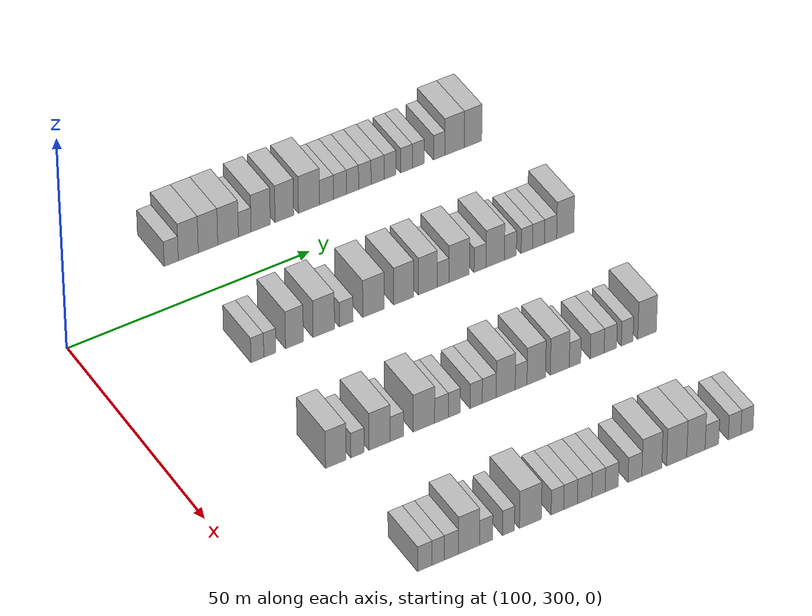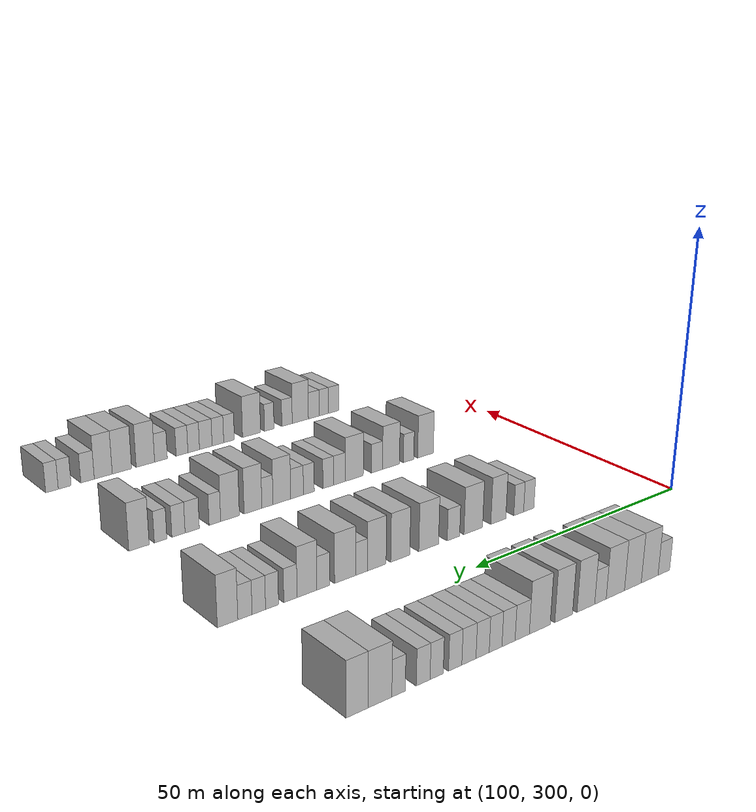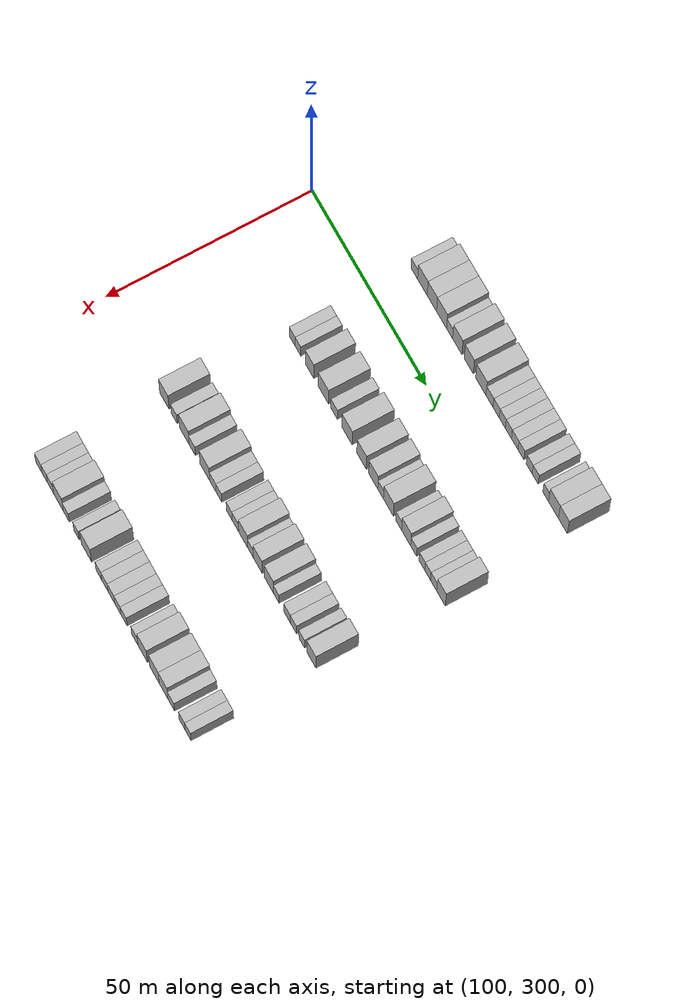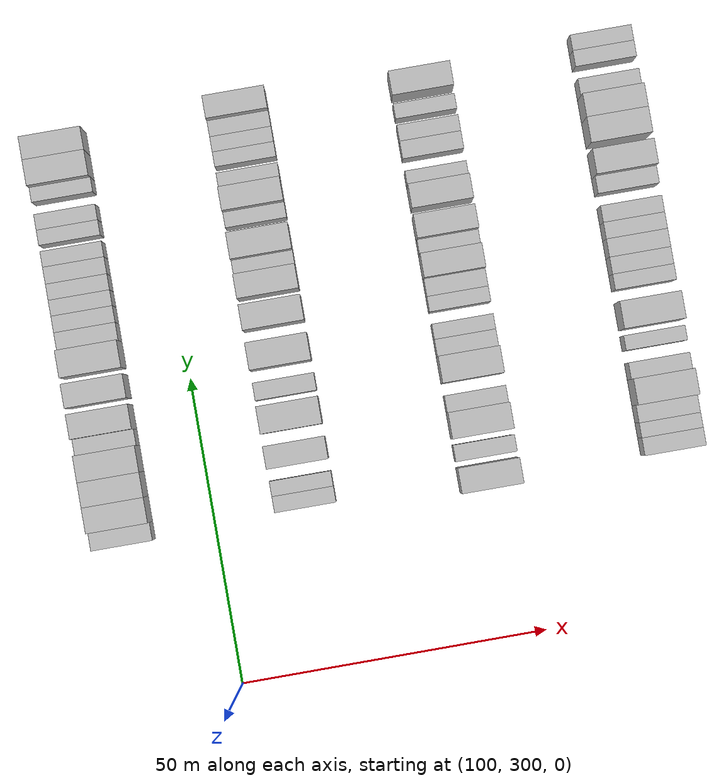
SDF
<sdf version="1.6">
 <world name="default">
  <model name="building_644">
   <static>1</static>
   <pose>85.0000 326.8894 0 0.000000 0.000000 0.000000</pose>
   <link name="link">
    <pose>0 0 3.00 0 0 0</pose>
    <collision name="collision"><geometry><box><size>10.0000 2.9223 6.0000</size></box></geometry></collision>
    <visual name="visual">
     <cast_shadows>0</cast_shadows>
     <geometry><box><size>10.0000 2.9223 6.0000</size></box></geometry>
     <material>
      <script>
       <uri>model://HANNAS_wall/materials/scripts</uri>
       <uri>model://HANNAS_wall/materials/textures</uri>
       <name>vrc/HANNAS_wall</name>
      </script>
     </material>
    </visual>
   </link>
  </model>
  <model name="building_645">
   <static>1</static>
   <pose>85.0000 330.4283 0 0.000000 0.000000 0.000000</pose>
   <link name="link">
    <pose>0 0 4.50 0 0 0</pose>
    <collision name="collision"><geometry><box><size>10.0000 4.1554 9.0000</size></box></geometry></collision>
    <visual name="visual">
     <cast_shadows>0</cast_shadows>
     <geometry><box><size>10.0000 4.1554 9.0000</size></box></geometry>
     <material>
      <script>
       <uri>model://HANNAS_wall/materials/scripts</uri>
       <uri>model://HANNAS_wall/materials/textures</uri>
       <name>vrc/HANNAS_wall</name>
      </script>
     </material>
    </visual>
   </link>
  </model>
  <model name="building_646">
   <static>1</static>
   <pose>85.0000 334.5354 0 0.000000 0.000000 0.000000</pose>
   <link name="link">
    <pose>0 0 4.50 0 0 0</pose>
    <collision name="collision"><geometry><box><size>10.0000 4.0590 9.0000</size></box></geometry></collision>
    <visual name="visual">
     <cast_shadows>0</cast_shadows>
     <geometry><box><size>10.0000 4.0590 9.0000</size></box></geometry>
     <material>
      <script>
       <uri>model://HANNAS_wall/materials/scripts</uri>
       <uri>model://HANNAS_wall/materials/textures</uri>
       <name>vrc/HANNAS_wall</name>
      </script>
     </material>
    </visual>
   </link>
  </model>
  <model name="building_647">
   <static>1</static>
   <pose>85.0000 338.7212 0 0.000000 0.000000 0.000000</pose>
   <link name="link">
    <pose>0 0 4.50 0 0 0</pose>
    <collision name="collision"><geometry><box><size>10.0000 4.3125 9.0000</size></box></geometry></collision>
    <visual name="visual">
     <cast_shadows>0</cast_shadows>
     <geometry><box><size>10.0000 4.3125 9.0000</size></box></geometry>
     <material>
      <script>
       <uri>model://HANNAS_wall/materials/scripts</uri>
       <uri>model://HANNAS_wall/materials/textures</uri>
       <name>vrc/HANNAS_wall</name>
      </script>
     </material>
    </visual>
   </link>
  </model>
  <model name="building_648">
   <static>1</static>
   <pose>85.0000 342.2088 0 0.000000 0.000000 0.000000</pose>
   <link name="link">
    <pose>0 0 3.00 0 0 0</pose>
    <collision name="collision"><geometry><box><size>10.0000 2.6627 6.0000</size></box></geometry></collision>
    <visual name="visual">
     <cast_shadows>0</cast_shadows>
     <geometry><box><size>10.0000 2.6627 6.0000</size></box></geometry>
     <material>
      <script>
       <uri>model://HANNAS_wall/materials/scripts</uri>
       <uri>model://HANNAS_wall/materials/textures</uri>
       <name>vrc/HANNAS_wall</name>
      </script>
     </material>
    </visual>
   </link>
  </model>
  <model name="building_649">
   <static>1</static>
   <pose>85.0000 345.5513 0 0.000000 0.000000 0.000000</pose>
   <link name="link">
    <pose>0 0 4.50 0 0 0</pose>
    <collision name="collision"><geometry><box><size>10.0000 4.0223 9.0000</size></box></geometry></collision>
    <visual name="visual">
     <cast_shadows>0</cast_shadows>
     <geometry><box><size>10.0000 4.0223 9.0000</size></box></geometry>
     <material>
      <script>
       <uri>model://HANNAS_wall/materials/scripts</uri>
       <uri>model://HANNAS_wall/materials/textures</uri>
       <name>vrc/HANNAS_wall</name>
      </script>
     </material>
    </visual>
   </link>
  </model>
  <model name="building_650">
   <static>1</static>
   <pose>85.0000 350.5192 0 0.000000 0.000000 0.000000</pose>
   <link name="link">
    <pose>0 0 4.50 0 0 0</pose>
    <collision name="collision"><geometry><box><size>10.0000 3.9135 9.0000</size></box></geometry></collision>
    <visual name="visual">
     <cast_shadows>0</cast_shadows>
     <geometry><box><size>10.0000 3.9135 9.0000</size></box></geometry>
     <material>
      <script>
       <uri>model://HANNAS_wall/materials/scripts</uri>
       <uri>model://HANNAS_wall/materials/textures</uri>
       <name>vrc/HANNAS_wall</name>
      </script>
     </material>
    </visual>
   </link>
  </model>
  <model name="building_651">
   <static>1</static>
   <pose>85.0000 355.7092 0 0.000000 0.000000 0.000000</pose>
   <link name="link">
    <pose>0 0 4.50 0 0 0</pose>
    <collision name="collision"><geometry><box><size>10.0000 4.4665 9.0000</size></box></geometry></collision>
    <visual name="visual">
     <cast_shadows>0</cast_shadows>
     <geometry><box><size>10.0000 4.4665 9.0000</size></box></geometry>
     <material>
      <script>
       <uri>model://HANNAS_wall/materials/scripts</uri>
       <uri>model://HANNAS_wall/materials/textures</uri>
       <name>vrc/HANNAS_wall</name>
      </script>
     </material>
    </visual>
   </link>
  </model>
  <model name="building_652">
   <static>1</static>
   <pose>85.0000 359.4335 0 0.000000 0.000000 0.000000</pose>
   <link name="link">
    <pose>0 0 3.00 0 0 0</pose>
    <collision name="collision"><geometry><box><size>10.0000 2.9821 6.0000</size></box></geometry></collision>
    <visual name="visual">
     <cast_shadows>0</cast_shadows>
     <geometry><box><size>10.0000 2.9821 6.0000</size></box></geometry>
     <material>
      <script>
       <uri>model://HANNAS_wall/materials/scripts</uri>
       <uri>model://HANNAS_wall/materials/textures</uri>
       <name>vrc/HANNAS_wall</name>
      </script>
     </material>
    </visual>
   </link>
  </model>
  <model name="building_653">
   <static>1</static>
   <pose>85.0000 362.2731 0 0.000000 0.000000 0.000000</pose>
   <link name="link">
    <pose>0 0 3.00 0 0 0</pose>
    <collision name="collision"><geometry><box><size>10.0000 2.6970 6.0000</size></box></geometry></collision>
    <visual name="visual">
     <cast_shadows>0</cast_shadows>
     <geometry><box><size>10.0000 2.6970 6.0000</size></box></geometry>
     <material>
      <script>
       <uri>model://HANNAS_wall/materials/scripts</uri>
       <uri>model://HANNAS_wall/materials/textures</uri>
       <name>vrc/HANNAS_wall</name>
      </script>
     </material>
    </visual>
   </link>
  </model>
  <model name="building_654">
   <static>1</static>
   <pose>85.0000 364.9172 0 0.000000 0.000000 0.000000</pose>
   <link name="link">
    <pose>0 0 3.00 0 0 0</pose>
    <collision name="collision"><geometry><box><size>10.0000 2.5913 6.0000</size></box></geometry></collision>
    <visual name="visual">
     <cast_shadows>0</cast_shadows>
     <geometry><box><size>10.0000 2.5913 6.0000</size></box></geometry>
     <material>
      <script>
       <uri>model://HANNAS_wall/materials/scripts</uri>
       <uri>model://HANNAS_wall/materials/textures</uri>
       <name>vrc/HANNAS_wall</name>
      </script>
     </material>
    </visual>
   </link>
  </model>
  <model name="building_655">
   <static>1</static>
   <pose>85.0000 367.5263 0 0.000000 0.000000 0.000000</pose>
   <link name="link">
    <pose>0 0 3.00 0 0 0</pose>
    <collision name="collision"><geometry><box><size>10.0000 2.6269 6.0000</size></box></geometry></collision>
    <visual name="visual">
     <cast_shadows>0</cast_shadows>
     <geometry><box><size>10.0000 2.6269 6.0000</size></box></geometry>
     <material>
      <script>
       <uri>model://HANNAS_wall/materials/scripts</uri>
       <uri>model://HANNAS_wall/materials/textures</uri>
       <name>vrc/HANNAS_wall</name>
      </script>
     </material>
    </visual>
   </link>
  </model>
  <model name="building_656">
   <static>1</static>
   <pose>85.0000 370.2239 0 0.000000 0.000000 0.000000</pose>
   <link name="link">
    <pose>0 0 3.00 0 0 0</pose>
    <collision name="collision"><geometry><box><size>10.0000 2.7682 6.0000</size></box></geometry></collision>
    <visual name="visual">
     <cast_shadows>0</cast_shadows>
     <geometry><box><size>10.0000 2.7682 6.0000</size></box></geometry>
     <material>
      <script>
       <uri>model://HANNAS_wall/materials/scripts</uri>
       <uri>model://HANNAS_wall/materials/textures</uri>
       <name>vrc/HANNAS_wall</name>
      </script>
     </material>
    </visual>
   </link>
  </model>
  <model name="building_657">
   <static>1</static>
   <pose>85.0000 372.8899 0 0.000000 0.000000 0.000000</pose>
   <link name="link">
    <pose>0 0 3.00 0 0 0</pose>
    <collision name="collision"><geometry><box><size>10.0000 2.5639 6.0000</size></box></geometry></collision>
    <visual name="visual">
     <cast_shadows>0</cast_shadows>
     <geometry><box><size>10.0000 2.5639 6.0000</size></box></geometry>
     <material>
      <script>
       <uri>model://HANNAS_wall/materials/scripts</uri>
       <uri>model://HANNAS_wall/materials/textures</uri>
       <name>vrc/HANNAS_wall</name>
      </script>
     </material>
    </visual>
   </link>
  </model>
  <model name="building_658">
   <static>1</static>
   <pose>85.0000 376.4154 0 0.000000 0.000000 0.000000</pose>
   <link name="link">
    <pose>0 0 3.00 0 0 0</pose>
    <collision name="collision"><geometry><box><size>10.0000 2.4871 6.0000</size></box></geometry></collision>
    <visual name="visual">
     <cast_shadows>0</cast_shadows>
     <geometry><box><size>10.0000 2.4871 6.0000</size></box></geometry>
     <material>
      <script>
       <uri>model://HANNAS_wall/materials/scripts</uri>
       <uri>model://HANNAS_wall/materials/textures</uri>
       <name>vrc/HANNAS_wall</name>
      </script>
     </material>
    </visual>
   </link>
  </model>
  <model name="building_659">
   <static>1</static>
   <pose>85.0000 378.9377 0 0.000000 0.000000 0.000000</pose>
   <link name="link">
    <pose>0 0 3.00 0 0 0</pose>
    <collision name="collision"><geometry><box><size>10.0000 2.5575 6.0000</size></box></geometry></collision>
    <visual name="visual">
     <cast_shadows>0</cast_shadows>
     <geometry><box><size>10.0000 2.5575 6.0000</size></box></geometry>
     <material>
      <script>
       <uri>model://HANNAS_wall/materials/scripts</uri>
       <uri>model://HANNAS_wall/materials/textures</uri>
       <name>vrc/HANNAS_wall</name>
      </script>
     </material>
    </visual>
   </link>
  </model>
  <model name="building_660">
   <static>1</static>
   <pose>85.0000 383.4239 0 0.000000 0.000000 0.000000</pose>
   <link name="link">
    <pose>0 0 3.00 0 0 0</pose>
    <collision name="collision"><geometry><box><size>10.0000 2.4148 6.0000</size></box></geometry></collision>
    <visual name="visual">
     <cast_shadows>0</cast_shadows>
     <geometry><box><size>10.0000 2.4148 6.0000</size></box></geometry>
     <material>
      <script>
       <uri>model://HANNAS_wall/materials/scripts</uri>
       <uri>model://HANNAS_wall/materials/textures</uri>
       <name>vrc/HANNAS_wall</name>
      </script>
     </material>
    </visual>
   </link>
  </model>
  <model name="building_661">
   <static>1</static>
   <pose>85.0000 386.7264 0 0.000000 0.000000 0.000000</pose>
   <link name="link">
    <pose>0 0 4.50 0 0 0</pose>
    <collision name="collision"><geometry><box><size>10.0000 4.1901 9.0000</size></box></geometry></collision>
    <visual name="visual">
     <cast_shadows>0</cast_shadows>
     <geometry><box><size>10.0000 4.1901 9.0000</size></box></geometry>
     <material>
      <script>
       <uri>model://HANNAS_wall/materials/scripts</uri>
       <uri>model://HANNAS_wall/materials/textures</uri>
       <name>vrc/HANNAS_wall</name>
      </script>
     </material>
    </visual>
   </link>
  </model>
  <model name="building_662">
   <static>1</static>
   <pose>85.0000 390.7058 0 0.000000 0.000000 0.000000</pose>
   <link name="link">
    <pose>0 0 4.50 0 0 0</pose>
    <collision name="collision"><geometry><box><size>10.0000 3.7687 9.0000</size></box></geometry></collision>
    <visual name="visual">
     <cast_shadows>0</cast_shadows>
     <geometry><box><size>10.0000 3.7687 9.0000</size></box></geometry>
     <material>
      <script>
       <uri>model://HANNAS_wall/materials/scripts</uri>
       <uri>model://HANNAS_wall/materials/textures</uri>
       <name>vrc/HANNAS_wall</name>
      </script>
     </material>
    </visual>
   </link>
  </model>
  <model name="building_874">
   <static>1</static>
   <pose>115.0000 327.7266 0 0.000000 0.000000 0.000000</pose>
   <link name="link">
    <pose>0 0 3.00 0 0 0</pose>
    <collision name="collision"><geometry><box><size>10.0000 2.6213 6.0000</size></box></geometry></collision>
    <visual name="visual">
     <cast_shadows>0</cast_shadows>
     <geometry><box><size>10.0000 2.6213 6.0000</size></box></geometry>
     <material>
      <script>
       <uri>model://HANNAS_wall/materials/scripts</uri>
       <uri>model://HANNAS_wall/materials/textures</uri>
       <name>vrc/HANNAS_wall</name>
      </script>
     </material>
    </visual>
   </link>
  </model>
  <model name="building_875">
   <static>1</static>
   <pose>115.0000 330.2695 0 0.000000 0.000000 0.000000</pose>
   <link name="link">
    <pose>0 0 3.00 0 0 0</pose>
    <collision name="collision"><geometry><box><size>10.0000 2.4645 6.0000</size></box></geometry></collision>
    <visual name="visual">
     <cast_shadows>0</cast_shadows>
     <geometry><box><size>10.0000 2.4645 6.0000</size></box></geometry>
     <material>
      <script>
       <uri>model://HANNAS_wall/materials/scripts</uri>
       <uri>model://HANNAS_wall/materials/textures</uri>
       <name>vrc/HANNAS_wall</name>
      </script>
     </material>
    </visual>
   </link>
  </model>
  <model name="building_876">
   <static>1</static>
   <pose>115.0000 335.3415 0 0.000000 0.000000 0.000000</pose>
   <link name="link">
    <pose>0 0 4.50 0 0 0</pose>
    <collision name="collision"><geometry><box><size>10.0000 3.6796 9.0000</size></box></geometry></collision>
    <visual name="visual">
     <cast_shadows>0</cast_shadows>
     <geometry><box><size>10.0000 3.6796 9.0000</size></box></geometry>
     <material>
      <script>
       <uri>model://HANNAS_wall/materials/scripts</uri>
       <uri>model://HANNAS_wall/materials/textures</uri>
       <name>vrc/HANNAS_wall</name>
      </script>
     </material>
    </visual>
   </link>
  </model>
  <model name="building_877">
   <static>1</static>
   <pose>115.0000 341.4014 0 0.000000 0.000000 0.000000</pose>
   <link name="link">
    <pose>0 0 4.50 0 0 0</pose>
    <collision name="collision"><geometry><box><size>10.0000 4.4401 9.0000</size></box></geometry></collision>
    <visual name="visual">
     <cast_shadows>0</cast_shadows>
     <geometry><box><size>10.0000 4.4401 9.0000</size></box></geometry>
     <material>
      <script>
       <uri>model://HANNAS_wall/materials/scripts</uri>
       <uri>model://HANNAS_wall/materials/textures</uri>
       <name>vrc/HANNAS_wall</name>
      </script>
     </material>
    </visual>
   </link>
  </model>
  <model name="building_878">
   <static>1</static>
   <pose>115.0000 346.0605 0 0.000000 0.000000 0.000000</pose>
   <link name="link">
    <pose>0 0 3.00 0 0 0</pose>
    <collision name="collision"><geometry><box><size>10.0000 2.8780 6.0000</size></box></geometry></collision>
    <visual name="visual">
     <cast_shadows>0</cast_shadows>
     <geometry><box><size>10.0000 2.8780 6.0000</size></box></geometry>
     <material>
      <script>
       <uri>model://HANNAS_wall/materials/scripts</uri>
       <uri>model://HANNAS_wall/materials/textures</uri>
       <name>vrc/HANNAS_wall</name>
      </script>
     </material>
    </visual>
   </link>
  </model>
  <model name="building_879">
   <static>1</static>
   <pose>115.0000 351.7235 0 0.000000 0.000000 0.000000</pose>
   <link name="link">
    <pose>0 0 4.50 0 0 0</pose>
    <collision name="collision"><geometry><box><size>10.0000 4.4481 9.0000</size></box></geometry></collision>
    <visual name="visual">
     <cast_shadows>0</cast_shadows>
     <geometry><box><size>10.0000 4.4481 9.0000</size></box></geometry>
     <material>
      <script>
       <uri>model://HANNAS_wall/materials/scripts</uri>
       <uri>model://HANNAS_wall/materials/textures</uri>
       <name>vrc/HANNAS_wall</name>
      </script>
     </material>
    </visual>
   </link>
  </model>
  <model name="building_880">
   <static>1</static>
   <pose>115.0000 358.0226 0 0.000000 0.000000 0.000000</pose>
   <link name="link">
    <pose>0 0 4.50 0 0 0</pose>
    <collision name="collision"><geometry><box><size>10.0000 4.1501 9.0000</size></box></geometry></collision>
    <visual name="visual">
     <cast_shadows>0</cast_shadows>
     <geometry><box><size>10.0000 4.1501 9.0000</size></box></geometry>
     <material>
      <script>
       <uri>model://HANNAS_wall/materials/scripts</uri>
       <uri>model://HANNAS_wall/materials/textures</uri>
       <name>vrc/HANNAS_wall</name>
      </script>
     </material>
    </visual>
   </link>
  </model>
  <model name="building_881">
   <static>1</static>
   <pose>115.0000 363.0850 0 0.000000 0.000000 0.000000</pose>
   <link name="link">
    <pose>0 0 4.50 0 0 0</pose>
    <collision name="collision"><geometry><box><size>10.0000 3.9746 9.0000</size></box></geometry></collision>
    <visual name="visual">
     <cast_shadows>0</cast_shadows>
     <geometry><box><size>10.0000 3.9746 9.0000</size></box></geometry>
     <material>
      <script>
       <uri>model://HANNAS_wall/materials/scripts</uri>
       <uri>model://HANNAS_wall/materials/textures</uri>
       <name>vrc/HANNAS_wall</name>
      </script>
     </material>
    </visual>
   </link>
  </model>
  <model name="building_882">
   <static>1</static>
   <pose>115.0000 366.2812 0 0.000000 0.000000 0.000000</pose>
   <link name="link">
    <pose>0 0 3.00 0 0 0</pose>
    <collision name="collision"><geometry><box><size>10.0000 2.4177 6.0000</size></box></geometry></collision>
    <visual name="visual">
     <cast_shadows>0</cast_shadows>
     <geometry><box><size>10.0000 2.4177 6.0000</size></box></geometry>
     <material>
      <script>
       <uri>model://HANNAS_wall/materials/scripts</uri>
       <uri>model://HANNAS_wall/materials/textures</uri>
       <name>vrc/HANNAS_wall</name>
      </script>
     </material>
    </visual>
   </link>
  </model>
  <model name="building_883">
   <static>1</static>
   <pose>115.0000 369.6537 0 0.000000 0.000000 0.000000</pose>
   <link name="link">
    <pose>0 0 4.50 0 0 0</pose>
    <collision name="collision"><geometry><box><size>10.0000 4.3272 9.0000</size></box></geometry></collision>
    <visual name="visual">
     <cast_shadows>0</cast_shadows>
     <geometry><box><size>10.0000 4.3272 9.0000</size></box></geometry>
     <material>
      <script>
       <uri>model://HANNAS_wall/materials/scripts</uri>
       <uri>model://HANNAS_wall/materials/textures</uri>
       <name>vrc/HANNAS_wall</name>
      </script>
     </material>
    </visual>
   </link>
  </model>
  <model name="building_884">
   <static>1</static>
   <pose>115.0000 374.0887 0 0.000000 0.000000 0.000000</pose>
   <link name="link">
    <pose>0 0 3.00 0 0 0</pose>
    <collision name="collision"><geometry><box><size>10.0000 2.5429 6.0000</size></box></geometry></collision>
    <visual name="visual">
     <cast_shadows>0</cast_shadows>
     <geometry><box><size>10.0000 2.5429 6.0000</size></box></geometry>
     <material>
      <script>
       <uri>model://HANNAS_wall/materials/scripts</uri>
       <uri>model://HANNAS_wall/materials/textures</uri>
       <name>vrc/HANNAS_wall</name>
      </script>
     </material>
    </visual>
   </link>
  </model>
  <model name="building_885">
   <static>1</static>
   <pose>115.0000 377.2968 0 0.000000 0.000000 0.000000</pose>
   <link name="link">
    <pose>0 0 4.50 0 0 0</pose>
    <collision name="collision"><geometry><box><size>10.0000 3.8734 9.0000</size></box></geometry></collision>
    <visual name="visual">
     <cast_shadows>0</cast_shadows>
     <geometry><box><size>10.0000 3.8734 9.0000</size></box></geometry>
     <material>
      <script>
       <uri>model://HANNAS_wall/materials/scripts</uri>
       <uri>model://HANNAS_wall/materials/textures</uri>
       <name>vrc/HANNAS_wall</name>
      </script>
     </material>
    </visual>
   </link>
  </model>
  <model name="building_886">
   <static>1</static>
   <pose>115.0000 380.5102 0 0.000000 0.000000 0.000000</pose>
   <link name="link">
    <pose>0 0 3.00 0 0 0</pose>
    <collision name="collision"><geometry><box><size>10.0000 2.5535 6.0000</size></box></geometry></collision>
    <visual name="visual">
     <cast_shadows>0</cast_shadows>
     <geometry><box><size>10.0000 2.5535 6.0000</size></box></geometry>
     <material>
      <script>
       <uri>model://HANNAS_wall/materials/scripts</uri>
       <uri>model://HANNAS_wall/materials/textures</uri>
       <name>vrc/HANNAS_wall</name>
      </script>
     </material>
    </visual>
   </link>
  </model>
  <model name="building_887">
   <static>1</static>
   <pose>115.0000 384.0117 0 0.000000 0.000000 0.000000</pose>
   <link name="link">
    <pose>0 0 3.00 0 0 0</pose>
    <collision name="collision"><geometry><box><size>10.0000 2.4496 6.0000</size></box></geometry></collision>
    <visual name="visual">
     <cast_shadows>0</cast_shadows>
     <geometry><box><size>10.0000 2.4496 6.0000</size></box></geometry>
     <material>
      <script>
       <uri>model://HANNAS_wall/materials/scripts</uri>
       <uri>model://HANNAS_wall/materials/textures</uri>
       <name>vrc/HANNAS_wall</name>
      </script>
     </material>
    </visual>
   </link>
  </model>
  <model name="building_888">
   <static>1</static>
   <pose>115.0000 386.4840 0 0.000000 0.000000 0.000000</pose>
   <link name="link">
    <pose>0 0 3.00 0 0 0</pose>
    <collision name="collision"><geometry><box><size>10.0000 2.4951 6.0000</size></box></geometry></collision>
    <visual name="visual">
     <cast_shadows>0</cast_shadows>
     <geometry><box><size>10.0000 2.4951 6.0000</size></box></geometry>
     <material>
      <script>
       <uri>model://HANNAS_wall/materials/scripts</uri>
       <uri>model://HANNAS_wall/materials/textures</uri>
       <name>vrc/HANNAS_wall</name>
      </script>
     </material>
    </visual>
   </link>
  </model>
  <model name="building_889">
   <static>1</static>
   <pose>115.0000 389.0364 0 0.000000 0.000000 0.000000</pose>
   <link name="link">
    <pose>0 0 3.00 0 0 0</pose>
    <collision name="collision"><geometry><box><size>10.0000 2.6096 6.0000</size></box></geometry></collision>
    <visual name="visual">
     <cast_shadows>0</cast_shadows>
     <geometry><box><size>10.0000 2.6096 6.0000</size></box></geometry>
     <material>
      <script>
       <uri>model://HANNAS_wall/materials/scripts</uri>
       <uri>model://HANNAS_wall/materials/textures</uri>
       <name>vrc/HANNAS_wall</name>
      </script>
     </material>
    </visual>
   </link>
  </model>
  <model name="building_890">
   <static>1</static>
   <pose>115.0000 392.1872 0 0.000000 0.000000 0.000000</pose>
   <link name="link">
    <pose>0 0 4.50 0 0 0</pose>
    <collision name="collision"><geometry><box><size>10.0000 3.6920 9.0000</size></box></geometry></collision>
    <visual name="visual">
     <cast_shadows>0</cast_shadows>
     <geometry><box><size>10.0000 3.6920 9.0000</size></box></geometry>
     <material>
      <script>
       <uri>model://HANNAS_wall/materials/scripts</uri>
       <uri>model://HANNAS_wall/materials/textures</uri>
       <name>vrc/HANNAS_wall</name>
      </script>
     </material>
    </visual>
   </link>
  </model>
  <model name="building_1099">
   <static>1</static>
   <pose>145.0000 326.3975 0 0.000000 0.000000 0.000000</pose>
   <link name="link">
    <pose>0 0 4.50 0 0 0</pose>
    <collision name="collision"><geometry><box><size>10.0000 4.1270 9.0000</size></box></geometry></collision>
    <visual name="visual">
     <cast_shadows>0</cast_shadows>
     <geometry><box><size>10.0000 4.1270 9.0000</size></box></geometry>
     <material>
      <script>
       <uri>model://HANNAS_wall/materials/scripts</uri>
       <uri>model://HANNAS_wall/materials/textures</uri>
       <name>vrc/HANNAS_wall</name>
      </script>
     </material>
    </visual>
   </link>
  </model>
  <model name="building_1100">
   <static>1</static>
   <pose>145.0000 330.8070 0 0.000000 0.000000 0.000000</pose>
   <link name="link">
    <pose>0 0 3.00 0 0 0</pose>
    <collision name="collision"><geometry><box><size>10.0000 2.6922 6.0000</size></box></geometry></collision>
    <visual name="visual">
     <cast_shadows>0</cast_shadows>
     <geometry><box><size>10.0000 2.6922 6.0000</size></box></geometry>
     <material>
      <script>
       <uri>model://HANNAS_wall/materials/scripts</uri>
       <uri>model://HANNAS_wall/materials/textures</uri>
       <name>vrc/HANNAS_wall</name>
      </script>
     </material>
    </visual>
   </link>
  </model>
  <model name="building_1101">
   <static>1</static>
   <pose>145.0000 335.2968 0 0.000000 0.000000 0.000000</pose>
   <link name="link">
    <pose>0 0 4.50 0 0 0</pose>
    <collision name="collision"><geometry><box><size>10.0000 4.2874 9.0000</size></box></geometry></collision>
    <visual name="visual">
     <cast_shadows>0</cast_shadows>
     <geometry><box><size>10.0000 4.2874 9.0000</size></box></geometry>
     <material>
      <script>
       <uri>model://HANNAS_wall/materials/scripts</uri>
       <uri>model://HANNAS_wall/materials/textures</uri>
       <name>vrc/HANNAS_wall</name>
      </script>
     </material>
    </visual>
   </link>
  </model>
  <model name="building_1102">
   <static>1</static>
   <pose>145.0000 338.8179 0 0.000000 0.000000 0.000000</pose>
   <link name="link">
    <pose>0 0 3.00 0 0 0</pose>
    <collision name="collision"><geometry><box><size>10.0000 2.7547 6.0000</size></box></geometry></collision>
    <visual name="visual">
     <cast_shadows>0</cast_shadows>
     <geometry><box><size>10.0000 2.7547 6.0000</size></box></geometry>
     <material>
      <script>
       <uri>model://HANNAS_wall/materials/scripts</uri>
       <uri>model://HANNAS_wall/materials/textures</uri>
       <name>vrc/HANNAS_wall</name>
      </script>
     </material>
    </visual>
   </link>
  </model>
  <model name="building_1103">
   <static>1</static>
   <pose>145.0000 344.3736 0 0.000000 0.000000 0.000000</pose>
   <link name="link">
    <pose>0 0 4.50 0 0 0</pose>
    <collision name="collision"><geometry><box><size>10.0000 4.3567 9.0000</size></box></geometry></collision>
    <visual name="visual">
     <cast_shadows>0</cast_shadows>
     <geometry><box><size>10.0000 4.3567 9.0000</size></box></geometry>
     <material>
      <script>
       <uri>model://HANNAS_wall/materials/scripts</uri>
       <uri>model://HANNAS_wall/materials/textures</uri>
       <name>vrc/HANNAS_wall</name>
      </script>
     </material>
    </visual>
   </link>
  </model>
  <model name="building_1104">
   <static>1</static>
   <pose>145.0000 347.9621 0 0.000000 0.000000 0.000000</pose>
   <link name="link">
    <pose>0 0 3.00 0 0 0</pose>
    <collision name="collision"><geometry><box><size>10.0000 2.8204 6.0000</size></box></geometry></collision>
    <visual name="visual">
     <cast_shadows>0</cast_shadows>
     <geometry><box><size>10.0000 2.8204 6.0000</size></box></geometry>
     <material>
      <script>
       <uri>model://HANNAS_wall/materials/scripts</uri>
       <uri>model://HANNAS_wall/materials/textures</uri>
       <name>vrc/HANNAS_wall</name>
      </script>
     </material>
    </visual>
   </link>
  </model>
  <model name="building_1105">
   <static>1</static>
   <pose>145.0000 350.6186 0 0.000000 0.000000 0.000000</pose>
   <link name="link">
    <pose>0 0 3.00 0 0 0</pose>
    <collision name="collision"><geometry><box><size>10.0000 2.4926 6.0000</size></box></geometry></collision>
    <visual name="visual">
     <cast_shadows>0</cast_shadows>
     <geometry><box><size>10.0000 2.4926 6.0000</size></box></geometry>
     <material>
      <script>
       <uri>model://HANNAS_wall/materials/scripts</uri>
       <uri>model://HANNAS_wall/materials/textures</uri>
       <name>vrc/HANNAS_wall</name>
      </script>
     </material>
    </visual>
   </link>
  </model>
  <model name="building_1106">
   <static>1</static>
   <pose>145.0000 355.1193 0 0.000000 0.000000 0.000000</pose>
   <link name="link">
    <pose>0 0 3.00 0 0 0</pose>
    <collision name="collision"><geometry><box><size>10.0000 2.5086 6.0000</size></box></geometry></collision>
    <visual name="visual">
     <cast_shadows>0</cast_shadows>
     <geometry><box><size>10.0000 2.5086 6.0000</size></box></geometry>
     <material>
      <script>
       <uri>model://HANNAS_wall/materials/scripts</uri>
       <uri>model://HANNAS_wall/materials/textures</uri>
       <name>vrc/HANNAS_wall</name>
      </script>
     </material>
    </visual>
   </link>
  </model>
  <model name="building_1107">
   <static>1</static>
   <pose>145.0000 357.8210 0 0.000000 0.000000 0.000000</pose>
   <link name="link">
    <pose>0 0 3.00 0 0 0</pose>
    <collision name="collision"><geometry><box><size>10.0000 2.8949 6.0000</size></box></geometry></collision>
    <visual name="visual">
     <cast_shadows>0</cast_shadows>
     <geometry><box><size>10.0000 2.8949 6.0000</size></box></geometry>
     <material>
      <script>
       <uri>model://HANNAS_wall/materials/scripts</uri>
       <uri>model://HANNAS_wall/materials/textures</uri>
       <name>vrc/HANNAS_wall</name>
      </script>
     </material>
    </visual>
   </link>
  </model>
  <model name="building_1108">
   <static>1</static>
   <pose>145.0000 361.2399 0 0.000000 0.000000 0.000000</pose>
   <link name="link">
    <pose>0 0 4.50 0 0 0</pose>
    <collision name="collision"><geometry><box><size>10.0000 3.9430 9.0000</size></box></geometry></collision>
    <visual name="visual">
     <cast_shadows>0</cast_shadows>
     <geometry><box><size>10.0000 3.9430 9.0000</size></box></geometry>
     <material>
      <script>
       <uri>model://HANNAS_wall/materials/scripts</uri>
       <uri>model://HANNAS_wall/materials/textures</uri>
       <name>vrc/HANNAS_wall</name>
      </script>
     </material>
    </visual>
   </link>
  </model>
  <model name="building_1109">
   <static>1</static>
   <pose>145.0000 364.4380 0 0.000000 0.000000 0.000000</pose>
   <link name="link">
    <pose>0 0 3.00 0 0 0</pose>
    <collision name="collision"><geometry><box><size>10.0000 2.4531 6.0000</size></box></geometry></collision>
    <visual name="visual">
     <cast_shadows>0</cast_shadows>
     <geometry><box><size>10.0000 2.4531 6.0000</size></box></geometry>
     <material>
      <script>
       <uri>model://HANNAS_wall/materials/scripts</uri>
       <uri>model://HANNAS_wall/materials/textures</uri>
       <name>vrc/HANNAS_wall</name>
      </script>
     </material>
    </visual>
   </link>
  </model>
  <model name="building_1110">
   <static>1</static>
   <pose>145.0000 367.5918 0 0.000000 0.000000 0.000000</pose>
   <link name="link">
    <pose>0 0 4.50 0 0 0</pose>
    <collision name="collision"><geometry><box><size>10.0000 3.8545 9.0000</size></box></geometry></collision>
    <visual name="visual">
     <cast_shadows>0</cast_shadows>
     <geometry><box><size>10.0000 3.8545 9.0000</size></box></geometry>
     <material>
      <script>
       <uri>model://HANNAS_wall/materials/scripts</uri>
       <uri>model://HANNAS_wall/materials/textures</uri>
       <name>vrc/HANNAS_wall</name>
      </script>
     </material>
    </visual>
   </link>
  </model>
  <model name="building_1111">
   <static>1</static>
   <pose>145.0000 372.4997 0 0.000000 0.000000 0.000000</pose>
   <link name="link">
    <pose>0 0 4.50 0 0 0</pose>
    <collision name="collision"><geometry><box><size>10.0000 3.9613 9.0000</size></box></geometry></collision>
    <visual name="visual">
     <cast_shadows>0</cast_shadows>
     <geometry><box><size>10.0000 3.9613 9.0000</size></box></geometry>
     <material>
      <script>
       <uri>model://HANNAS_wall/materials/scripts</uri>
       <uri>model://HANNAS_wall/materials/textures</uri>
       <name>vrc/HANNAS_wall</name>
      </script>
     </material>
    </visual>
   </link>
  </model>
  <model name="building_1112">
   <static>1</static>
   <pose>145.0000 375.6822 0 0.000000 0.000000 0.000000</pose>
   <link name="link">
    <pose>0 0 3.00 0 0 0</pose>
    <collision name="collision"><geometry><box><size>10.0000 2.4036 6.0000</size></box></geometry></collision>
    <visual name="visual">
     <cast_shadows>0</cast_shadows>
     <geometry><box><size>10.0000 2.4036 6.0000</size></box></geometry>
     <material>
      <script>
       <uri>model://HANNAS_wall/materials/scripts</uri>
       <uri>model://HANNAS_wall/materials/textures</uri>
       <name>vrc/HANNAS_wall</name>
      </script>
     </material>
    </visual>
   </link>
  </model>
  <model name="building_1113">
   <static>1</static>
   <pose>145.0000 380.3320 0 0.000000 0.000000 0.000000</pose>
   <link name="link">
    <pose>0 0 3.00 0 0 0</pose>
    <collision name="collision"><geometry><box><size>10.0000 2.8959 6.0000</size></box></geometry></collision>
    <visual name="visual">
     <cast_shadows>0</cast_shadows>
     <geometry><box><size>10.0000 2.8959 6.0000</size></box></geometry>
     <material>
      <script>
       <uri>model://HANNAS_wall/materials/scripts</uri>
       <uri>model://HANNAS_wall/materials/textures</uri>
       <name>vrc/HANNAS_wall</name>
      </script>
     </material>
    </visual>
   </link>
  </model>
  <model name="building_1114">
   <static>1</static>
   <pose>145.0000 383.1017 0 0.000000 0.000000 0.000000</pose>
   <link name="link">
    <pose>0 0 3.00 0 0 0</pose>
    <collision name="collision"><geometry><box><size>10.0000 2.6436 6.0000</size></box></geometry></collision>
    <visual name="visual">
     <cast_shadows>0</cast_shadows>
     <geometry><box><size>10.0000 2.6436 6.0000</size></box></geometry>
     <material>
      <script>
       <uri>model://HANNAS_wall/materials/scripts</uri>
       <uri>model://HANNAS_wall/materials/textures</uri>
       <name>vrc/HANNAS_wall</name>
      </script>
     </material>
    </visual>
   </link>
  </model>
  <model name="building_1115">
   <static>1</static>
   <pose>145.0000 386.6547 0 0.000000 0.000000 0.000000</pose>
   <link name="link">
    <pose>0 0 3.00 0 0 0</pose>
    <collision name="collision"><geometry><box><size>10.0000 2.4625 6.0000</size></box></geometry></collision>
    <visual name="visual">
     <cast_shadows>0</cast_shadows>
     <geometry><box><size>10.0000 2.4625 6.0000</size></box></geometry>
     <material>
      <script>
       <uri>model://HANNAS_wall/materials/scripts</uri>
       <uri>model://HANNAS_wall/materials/textures</uri>
       <name>vrc/HANNAS_wall</name>
      </script>
     </material>
    </visual>
   </link>
  </model>
  <model name="building_1116">
   <static>1</static>
   <pose>145.0000 390.8477 0 0.000000 0.000000 0.000000</pose>
   <link name="link">
    <pose>0 0 4.50 0 0 0</pose>
    <collision name="collision"><geometry><box><size>10.0000 3.9234 9.0000</size></box></geometry></collision>
    <visual name="visual">
     <cast_shadows>0</cast_shadows>
     <geometry><box><size>10.0000 3.9234 9.0000</size></box></geometry>
     <material>
      <script>
       <uri>model://HANNAS_wall/materials/scripts</uri>
       <uri>model://HANNAS_wall/materials/textures</uri>
       <name>vrc/HANNAS_wall</name>
      </script>
     </material>
    </visual>
   </link>
  </model>
  <model name="building_1331">
   <static>1</static>
   <pose>175.0000 326.6609 0 0.000000 0.000000 0.000000</pose>
   <link name="link">
    <pose>0 0 3.00 0 0 0</pose>
    <collision name="collision"><geometry><box><size>10.0000 2.8891 6.0000</size></box></geometry></collision>
    <visual name="visual">
     <cast_shadows>0</cast_shadows>
     <geometry><box><size>10.0000 2.8891 6.0000</size></box></geometry>
     <material>
      <script>
       <uri>model://HANNAS_wall/materials/scripts</uri>
       <uri>model://HANNAS_wall/materials/textures</uri>
       <name>vrc/HANNAS_wall</name>
      </script>
     </material>
    </visual>
   </link>
  </model>
  <model name="building_1332">
   <static>1</static>
   <pose>175.0000 329.3292 0 0.000000 0.000000 0.000000</pose>
   <link name="link">
    <pose>0 0 3.00 0 0 0</pose>
    <collision name="collision"><geometry><box><size>10.0000 2.4475 6.0000</size></box></geometry></collision>
    <visual name="visual">
     <cast_shadows>0</cast_shadows>
     <geometry><box><size>10.0000 2.4475 6.0000</size></box></geometry>
     <material>
      <script>
       <uri>model://HANNAS_wall/materials/scripts</uri>
       <uri>model://HANNAS_wall/materials/textures</uri>
       <name>vrc/HANNAS_wall</name>
      </script>
     </material>
    </visual>
   </link>
  </model>
  <model name="building_1333">
   <static>1</static>
   <pose>175.0000 331.9901 0 0.000000 0.000000 0.000000</pose>
   <link name="link">
    <pose>0 0 3.00 0 0 0</pose>
    <collision name="collision"><geometry><box><size>10.0000 2.8744 6.0000</size></box></geometry></collision>
    <visual name="visual">
     <cast_shadows>0</cast_shadows>
     <geometry><box><size>10.0000 2.8744 6.0000</size></box></geometry>
     <material>
      <script>
       <uri>model://HANNAS_wall/materials/scripts</uri>
       <uri>model://HANNAS_wall/materials/textures</uri>
       <name>vrc/HANNAS_wall</name>
      </script>
     </material>
    </visual>
   </link>
  </model>
  <model name="building_1334">
   <static>1</static>
   <pose>175.0000 335.5455 0 0.000000 0.000000 0.000000</pose>
   <link name="link">
    <pose>0 0 4.50 0 0 0</pose>
    <collision name="collision"><geometry><box><size>10.0000 4.2364 9.0000</size></box></geometry></collision>
    <visual name="visual">
     <cast_shadows>0</cast_shadows>
     <geometry><box><size>10.0000 4.2364 9.0000</size></box></geometry>
     <material>
      <script>
       <uri>model://HANNAS_wall/materials/scripts</uri>
       <uri>model://HANNAS_wall/materials/textures</uri>
       <name>vrc/HANNAS_wall</name>
      </script>
     </material>
    </visual>
   </link>
  </model>
  <model name="building_1335">
   <static>1</static>
   <pose>175.0000 339.0019 0 0.000000 0.000000 0.000000</pose>
   <link name="link">
    <pose>0 0 3.00 0 0 0</pose>
    <collision name="collision"><geometry><box><size>10.0000 2.6762 6.0000</size></box></geometry></collision>
    <visual name="visual">
     <cast_shadows>0</cast_shadows>
     <geometry><box><size>10.0000 2.6762 6.0000</size></box></geometry>
     <material>
      <script>
       <uri>model://HANNAS_wall/materials/scripts</uri>
       <uri>model://HANNAS_wall/materials/textures</uri>
       <name>vrc/HANNAS_wall</name>
      </script>
     </material>
    </visual>
   </link>
  </model>
  <model name="building_1336">
   <static>1</static>
   <pose>175.0000 343.5464 0 0.000000 0.000000 0.000000</pose>
   <link name="link">
    <pose>0 0 3.00 0 0 0</pose>
    <collision name="collision"><geometry><box><size>10.0000 2.4129 6.0000</size></box></geometry></collision>
    <visual name="visual">
     <cast_shadows>0</cast_shadows>
     <geometry><box><size>10.0000 2.4129 6.0000</size></box></geometry>
     <material>
      <script>
       <uri>model://HANNAS_wall/materials/scripts</uri>
       <uri>model://HANNAS_wall/materials/textures</uri>
       <name>vrc/HANNAS_wall</name>
      </script>
     </material>
    </visual>
   </link>
  </model>
  <model name="building_1337">
   <static>1</static>
   <pose>175.0000 347.9825 0 0.000000 0.000000 0.000000</pose>
   <link name="link">
    <pose>0 0 4.50 0 0 0</pose>
    <collision name="collision"><geometry><box><size>10.0000 4.4593 9.0000</size></box></geometry></collision>
    <visual name="visual">
     <cast_shadows>0</cast_shadows>
     <geometry><box><size>10.0000 4.4593 9.0000</size></box></geometry>
     <material>
      <script>
       <uri>model://HANNAS_wall/materials/scripts</uri>
       <uri>model://HANNAS_wall/materials/textures</uri>
       <name>vrc/HANNAS_wall</name>
      </script>
     </material>
    </visual>
   </link>
  </model>
  <model name="building_1338">
   <static>1</static>
   <pose>175.0000 353.5016 0 0.000000 0.000000 0.000000</pose>
   <link name="link">
    <pose>0 0 3.00 0 0 0</pose>
    <collision name="collision"><geometry><box><size>10.0000 2.5788 6.0000</size></box></geometry></collision>
    <visual name="visual">
     <cast_shadows>0</cast_shadows>
     <geometry><box><size>10.0000 2.5788 6.0000</size></box></geometry>
     <material>
      <script>
       <uri>model://HANNAS_wall/materials/scripts</uri>
       <uri>model://HANNAS_wall/materials/textures</uri>
       <name>vrc/HANNAS_wall</name>
      </script>
     </material>
    </visual>
   </link>
  </model>
  <model name="building_1339">
   <static>1</static>
   <pose>175.0000 356.1821 0 0.000000 0.000000 0.000000</pose>
   <link name="link">
    <pose>0 0 3.00 0 0 0</pose>
    <collision name="collision"><geometry><box><size>10.0000 2.7823 6.0000</size></box></geometry></collision>
    <visual name="visual">
     <cast_shadows>0</cast_shadows>
     <geometry><box><size>10.0000 2.7823 6.0000</size></box></geometry>
     <material>
      <script>
       <uri>model://HANNAS_wall/materials/scripts</uri>
       <uri>model://HANNAS_wall/materials/textures</uri>
       <name>vrc/HANNAS_wall</name>
      </script>
     </material>
    </visual>
   </link>
  </model>
  <model name="building_1340">
   <static>1</static>
   <pose>175.0000 359.0610 0 0.000000 0.000000 0.000000</pose>
   <link name="link">
    <pose>0 0 3.00 0 0 0</pose>
    <collision name="collision"><geometry><box><size>10.0000 2.9755 6.0000</size></box></geometry></collision>
    <visual name="visual">
     <cast_shadows>0</cast_shadows>
     <geometry><box><size>10.0000 2.9755 6.0000</size></box></geometry>
     <material>
      <script>
       <uri>model://HANNAS_wall/materials/scripts</uri>
       <uri>model://HANNAS_wall/materials/textures</uri>
       <name>vrc/HANNAS_wall</name>
      </script>
     </material>
    </visual>
   </link>
  </model>
  <model name="building_1341">
   <static>1</static>
   <pose>175.0000 361.9014 0 0.000000 0.000000 0.000000</pose>
   <link name="link">
    <pose>0 0 3.00 0 0 0</pose>
    <collision name="collision"><geometry><box><size>10.0000 2.7053 6.0000</size></box></geometry></collision>
    <visual name="visual">
     <cast_shadows>0</cast_shadows>
     <geometry><box><size>10.0000 2.7053 6.0000</size></box></geometry>
     <material>
      <script>
       <uri>model://HANNAS_wall/materials/scripts</uri>
       <uri>model://HANNAS_wall/materials/textures</uri>
       <name>vrc/HANNAS_wall</name>
      </script>
     </material>
    </visual>
   </link>
  </model>
  <model name="building_1342">
   <static>1</static>
   <pose>175.0000 364.6141 0 0.000000 0.000000 0.000000</pose>
   <link name="link">
    <pose>0 0 3.00 0 0 0</pose>
    <collision name="collision"><geometry><box><size>10.0000 2.7199 6.0000</size></box></geometry></collision>
    <visual name="visual">
     <cast_shadows>0</cast_shadows>
     <geometry><box><size>10.0000 2.7199 6.0000</size></box></geometry>
     <material>
      <script>
       <uri>model://HANNAS_wall/materials/scripts</uri>
       <uri>model://HANNAS_wall/materials/textures</uri>
       <name>vrc/HANNAS_wall</name>
      </script>
     </material>
    </visual>
   </link>
  </model>
  <model name="building_1343">
   <static>1</static>
   <pose>175.0000 369.4086 0 0.000000 0.000000 0.000000</pose>
   <link name="link">
    <pose>0 0 3.00 0 0 0</pose>
    <collision name="collision"><geometry><box><size>10.0000 2.8690 6.0000</size></box></geometry></collision>
    <visual name="visual">
     <cast_shadows>0</cast_shadows>
     <geometry><box><size>10.0000 2.8690 6.0000</size></box></geometry>
     <material>
      <script>
       <uri>model://HANNAS_wall/materials/scripts</uri>
       <uri>model://HANNAS_wall/materials/textures</uri>
       <name>vrc/HANNAS_wall</name>
      </script>
     </material>
    </visual>
   </link>
  </model>
  <model name="building_1344">
   <static>1</static>
   <pose>175.0000 372.8925 0 0.000000 0.000000 0.000000</pose>
   <link name="link">
    <pose>0 0 4.50 0 0 0</pose>
    <collision name="collision"><geometry><box><size>10.0000 4.0990 9.0000</size></box></geometry></collision>
    <visual name="visual">
     <cast_shadows>0</cast_shadows>
     <geometry><box><size>10.0000 4.0990 9.0000</size></box></geometry>
     <material>
      <script>
       <uri>model://HANNAS_wall/materials/scripts</uri>
       <uri>model://HANNAS_wall/materials/textures</uri>
       <name>vrc/HANNAS_wall</name>
      </script>
     </material>
    </visual>
   </link>
  </model>
  <model name="building_1345">
   <static>1</static>
   <pose>175.0000 378.0342 0 0.000000 0.000000 0.000000</pose>
   <link name="link">
    <pose>0 0 4.50 0 0 0</pose>
    <collision name="collision"><geometry><box><size>10.0000 4.1843 9.0000</size></box></geometry></collision>
    <visual name="visual">
     <cast_shadows>0</cast_shadows>
     <geometry><box><size>10.0000 4.1843 9.0000</size></box></geometry>
     <material>
      <script>
       <uri>model://HANNAS_wall/materials/scripts</uri>
       <uri>model://HANNAS_wall/materials/textures</uri>
       <name>vrc/HANNAS_wall</name>
      </script>
     </material>
    </visual>
   </link>
  </model>
  <model name="building_1346">
   <static>1</static>
   <pose>175.0000 382.0391 0 0.000000 0.000000 0.000000</pose>
   <link name="link">
    <pose>0 0 4.50 0 0 0</pose>
    <collision name="collision"><geometry><box><size>10.0000 3.8255 9.0000</size></box></geometry></collision>
    <visual name="visual">
     <cast_shadows>0</cast_shadows>
     <geometry><box><size>10.0000 3.8255 9.0000</size></box></geometry>
     <material>
      <script>
       <uri>model://HANNAS_wall/materials/scripts</uri>
       <uri>model://HANNAS_wall/materials/textures</uri>
       <name>vrc/HANNAS_wall</name>
      </script>
     </material>
    </visual>
   </link>
  </model>
  <model name="building_1347">
   <static>1</static>
   <pose>175.0000 385.3652 0 0.000000 0.000000 0.000000</pose>
   <link name="link">
    <pose>0 0 3.00 0 0 0</pose>
    <collision name="collision"><geometry><box><size>10.0000 2.8269 6.0000</size></box></geometry></collision>
    <visual name="visual">
     <cast_shadows>0</cast_shadows>
     <geometry><box><size>10.0000 2.8269 6.0000</size></box></geometry>
     <material>
      <script>
       <uri>model://HANNAS_wall/materials/scripts</uri>
       <uri>model://HANNAS_wall/materials/textures</uri>
       <name>vrc/HANNAS_wall</name>
      </script>
     </material>
    </visual>
   </link>
  </model>
  <model name="building_1348">
   <static>1</static>
   <pose>175.0000 390.0962 0 0.000000 0.000000 0.000000</pose>
   <link name="link">
    <pose>0 0 3.00 0 0 0</pose>
    <collision name="collision"><geometry><box><size>10.0000 2.6350 6.0000</size></box></geometry></collision>
    <visual name="visual">
     <cast_shadows>0</cast_shadows>
     <geometry><box><size>10.0000 2.6350 6.0000</size></box></geometry>
     <material>
      <script>
       <uri>model://HANNAS_wall/materials/scripts</uri>
       <uri>model://HANNAS_wall/materials/textures</uri>
       <name>vrc/HANNAS_wall</name>
      </script>
     </material>
    </visual>
   </link>
  </model>
  <model name="building_1349">
   <static>1</static>
   <pose>175.0000 392.6918 0 0.000000 0.000000 0.000000</pose>
   <link name="link">
    <pose>0 0 3.00 0 0 0</pose>
    <collision name="collision"><geometry><box><size>10.0000 2.5564 6.0000</size></box></geometry></collision>
    <visual name="visual">
     <cast_shadows>0</cast_shadows>
     <geometry><box><size>10.0000 2.5564 6.0000</size></box></geometry>
     <material>
      <script>
       <uri>model://HANNAS_wall/materials/scripts</uri>
       <uri>model://HANNAS_wall/materials/textures</uri>
       <name>vrc/HANNAS_wall</name>
      </script>
     </material>
    </visual>
   </link>
  </model>
 </world>
</sdf>
